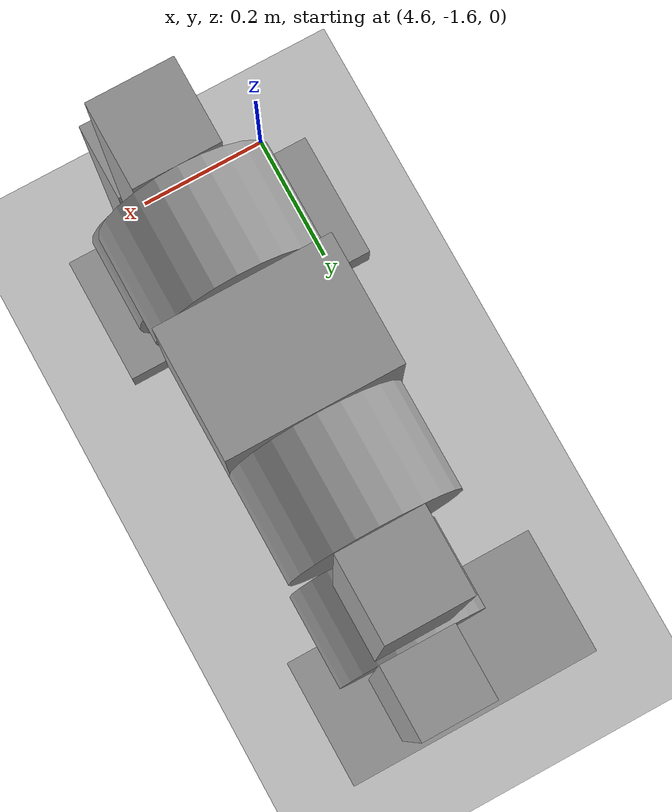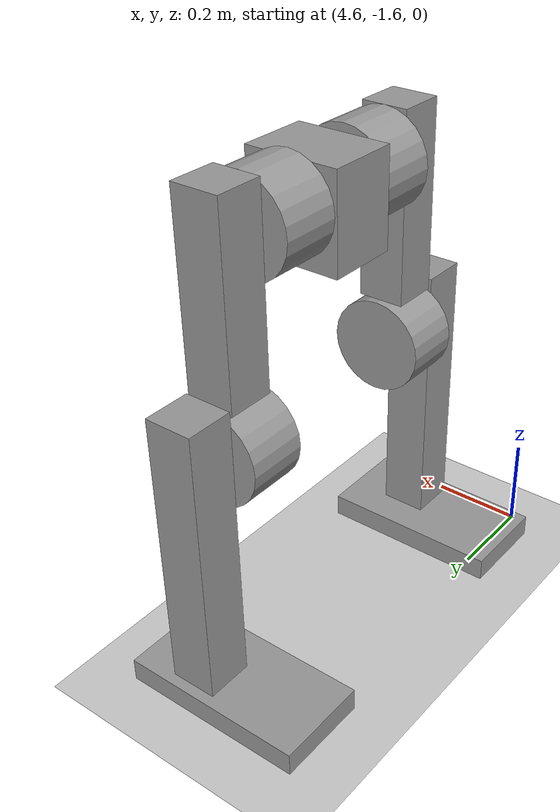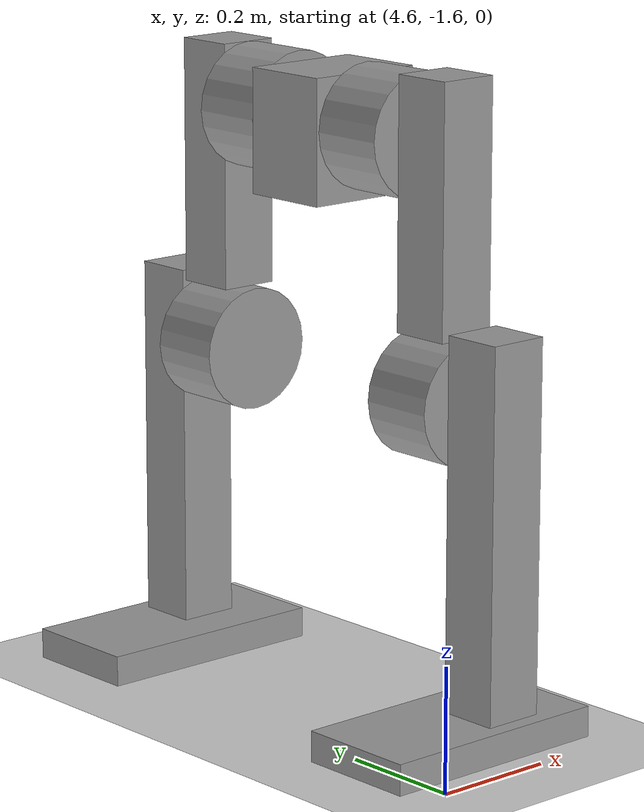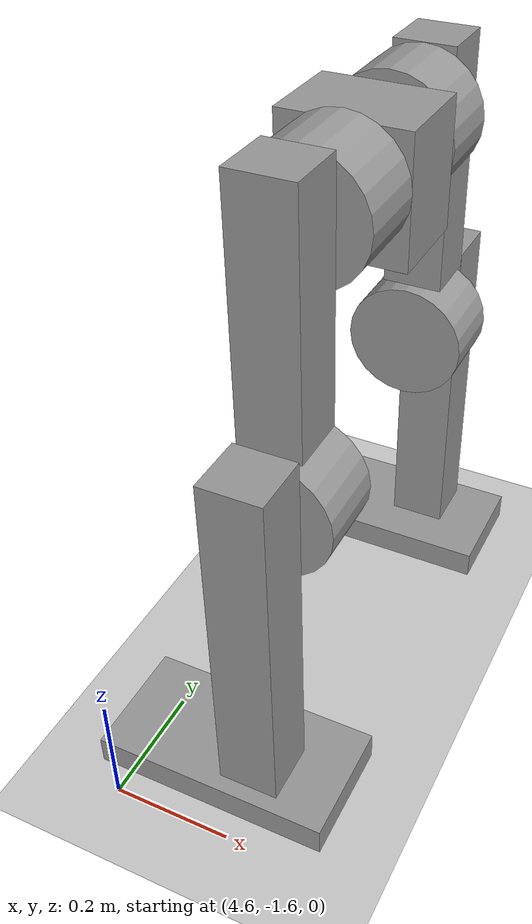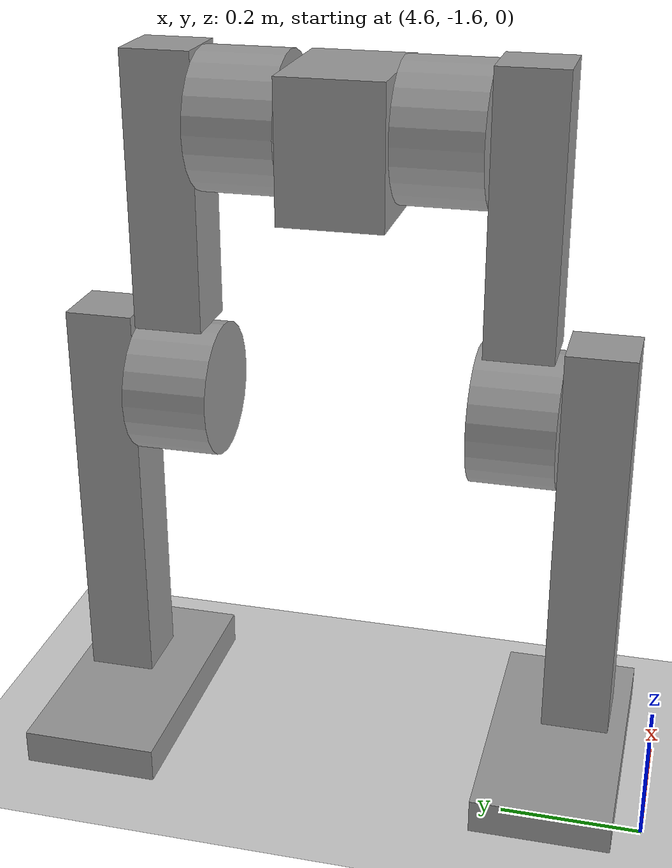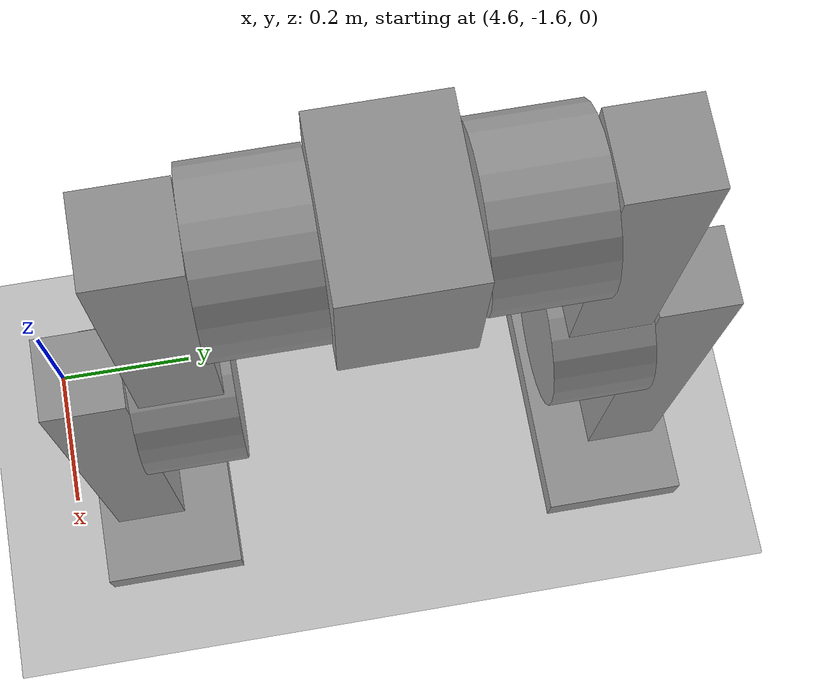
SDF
<sdf version="1.6">
 <world name="default">
  <model name="ground_plane">
   <static>1</static>
   <link name="link">
    <collision name="collision">
     <geometry><plane><normal>0 0 1</normal><size>100 100</size></plane></geometry>
     <surface><friction><ode><mu>100</mu><mu2>50</mu2></ode></friction></surface>
    </collision>
    <visual name="visual">
     <cast_shadows>0</cast_shadows>
     <geometry><plane><normal>0 0 1</normal><size>100 100</size></plane></geometry>
     <material>
      <script><uri>file://media/materials/scripts/gazebo.material</uri><name>Gazebo/Grey</name></script>
     </material>
    </visual>
   </link>
  </model>
  <model name="humanoid3">
   <link name="link_0_clone">
    <pose>-0.327462 1.23378 -0.128216 0 -0 0</pose>
    <inertial>
     <mass>1</mass>
     <inertia>
      <ixx>0.166667</ixx>
      <ixy>0</ixy>
      <ixz>0</ixz>
      <iyy>0.166667</iyy>
      <iyz>0</iyz>
      <izz>0.166667</izz>
     </inertia>
    </inertial>
    <visual name="visual">
     <geometry><box><size>0.4 0.2 0.05</size></box></geometry>
     <material>
      <lighting>1</lighting>
      <script><uri>file://media/materials/scripts/gazebo.material</uri><name>Gazebo/Grey</name></script>
      <ambient>0.3 0.3 0.3 1</ambient>
      <diffuse>0.7 0.7 0.7 1</diffuse>
      <specular>0.01 0.01 0.01 1</specular>
      <emissive>0 0 0 1</emissive>
      <shader type="vertex"><normal_map>__default__</normal_map></shader>
     </material>
    </visual>
    <collision name="collision">
     <geometry><box><size>0.4 0.2 0.05</size></box></geometry>
     <surface>
      <friction>
       <ode><mu>1</mu><mu2>1</mu2><fdir1>0 0 0</fdir1><slip1>0</slip1><slip2>0</slip2></ode>
       <torsional>
        <coefficient>1</coefficient>
        <patch_radius>0</patch_radius>
        <surface_radius>0</surface_radius>
        <use_patch_radius>1</use_patch_radius>
        <ode><slip>0</slip></ode>
       </torsional>
      </friction>
      <bounce><restitution_coefficient>0</restitution_coefficient><threshold>1e+06</threshold></bounce>
      <contact>
       <collide_without_contact>0</collide_without_contact>
       <collide_without_contact_bitmask>1</collide_without_contact_bitmask>
       <collide_bitmask>1</collide_bitmask>
       <ode>
        <soft_cfm>0</soft_cfm>
        <soft_erp>0.2</soft_erp>
        <kp>1e+13</kp>
        <kd>1</kd>
        <max_vel>0.01</max_vel>
        <min_depth>0</min_depth>
       </ode>
       <bullet>
        <split_impulse>1</split_impulse>
        <split_impulse_penetration_threshold>-0.01</split_impulse_penetration_threshold>
        <soft_cfm>0</soft_cfm>
        <soft_erp>0.2</soft_erp>
        <kp>1e+13</kp>
        <kd>1</kd>
       </bullet>
      </contact>
     </surface>
    </collision>
   </link>
   <link name="link_0_clone_clone">
    <pose>-0.327462 0.558836 -0.128216 0 -0 0</pose>
    <inertial>
     <mass>1</mass>
     <inertia>
      <ixx>0.166667</ixx>
      <ixy>0</ixy>
      <ixz>0</ixz>
      <iyy>0.166667</iyy>
      <iyz>0</iyz>
      <izz>0.166667</izz>
     </inertia>
    </inertial>
    <visual name="visual">
     <geometry><box><size>0.4 0.2 0.05</size></box></geometry>
     <material>
      <lighting>1</lighting>
      <script><uri>file://media/materials/scripts/gazebo.material</uri><name>Gazebo/Grey</name></script>
      <ambient>0.3 0.3 0.3 1</ambient>
      <diffuse>0.7 0.7 0.7 1</diffuse>
      <specular>0.01 0.01 0.01 1</specular>
      <emissive>0 0 0 1</emissive>
      <shader type="vertex"><normal_map>__default__</normal_map></shader>
     </material>
    </visual>
    <collision name="collision">
     <geometry><box><size>0.4 0.2 0.05</size></box></geometry>
     <surface>
      <friction>
       <ode><mu>1</mu><mu2>1</mu2><fdir1>0 0 0</fdir1><slip1>0</slip1><slip2>0</slip2></ode>
       <torsional>
        <coefficient>1</coefficient>
        <patch_radius>0</patch_radius>
        <surface_radius>0</surface_radius>
        <use_patch_radius>1</use_patch_radius>
        <ode><slip>0</slip></ode>
       </torsional>
      </friction>
      <bounce><restitution_coefficient>0</restitution_coefficient><threshold>1e+06</threshold></bounce>
      <contact>
       <collide_without_contact>0</collide_without_contact>
       <collide_without_contact_bitmask>1</collide_without_contact_bitmask>
       <collide_bitmask>1</collide_bitmask>
       <ode>
        <soft_cfm>0</soft_cfm>
        <soft_erp>0.2</soft_erp>
        <kp>1e+13</kp>
        <kd>1</kd>
        <max_vel>0.01</max_vel>
        <min_depth>0</min_depth>
       </ode>
       <bullet>
        <split_impulse>1</split_impulse>
        <split_impulse_penetration_threshold>-0.01</split_impulse_penetration_threshold>
        <soft_cfm>0</soft_cfm>
        <soft_erp>0.2</soft_erp>
        <kp>1e+13</kp>
        <kd>1</kd>
       </bullet>
      </contact>
     </surface>
    </collision>
   </link>
   <link name="link_1">
    <pose>-0.269493 0.9 0.764919 0 -0 0</pose>
    <inertial>
     <mass>1</mass>
     <inertia>
      <ixx>0.166667</ixx>
      <ixy>0</ixy>
      <ixz>0</ixz>
      <iyy>0.166667</iyy>
      <iyz>0</iyz>
      <izz>0.166667</izz>
     </inertia>
    </inertial>
    <visual name="visual">
     <geometry><box><size>0.2 0.15 0.2</size></box></geometry>
     <material>
      <lighting>1</lighting>
      <script><uri>file://media/materials/scripts/gazebo.material</uri><name>Gazebo/Grey</name></script>
      <ambient>0.3 0.3 0.3 1</ambient>
      <diffuse>0.7 0.7 0.7 1</diffuse>
      <specular>0.01 0.01 0.01 1</specular>
      <emissive>0 0 0 1</emissive>
      <shader type="vertex"><normal_map>__default__</normal_map></shader>
     </material>
    </visual>
    <collision name="collision">
     <geometry><box><size>0.2 0.15 0.2</size></box></geometry>
     <surface>
      <friction>
       <ode><mu>1</mu><mu2>1</mu2><fdir1>0 0 0</fdir1><slip1>0</slip1><slip2>0</slip2></ode>
       <torsional>
        <coefficient>1</coefficient>
        <patch_radius>0</patch_radius>
        <surface_radius>0</surface_radius>
        <use_patch_radius>1</use_patch_radius>
        <ode><slip>0</slip></ode>
       </torsional>
      </friction>
      <bounce><restitution_coefficient>0</restitution_coefficient><threshold>1e+06</threshold></bounce>
      <contact>
       <collide_without_contact>0</collide_without_contact>
       <collide_without_contact_bitmask>1</collide_without_contact_bitmask>
       <collide_bitmask>1</collide_bitmask>
       <ode>
        <soft_cfm>0</soft_cfm>
        <soft_erp>0.2</soft_erp>
        <kp>1e+13</kp>
        <kd>1</kd>
        <max_vel>0.01</max_vel>
        <min_depth>0</min_depth>
       </ode>
       <bullet>
        <split_impulse>1</split_impulse>
        <split_impulse_penetration_threshold>-0.01</split_impulse_penetration_threshold>
        <soft_cfm>0</soft_cfm>
        <soft_erp>0.2</soft_erp>
        <kp>1e+13</kp>
        <kd>1</kd>
       </bullet>
      </contact>
     </surface>
    </collision>
   </link>
   <link name="link_2">
    <pose>-0.26746 1.04068 0.781244 1.57109 -1.5566 3.1413</pose>
    <inertial>
     <mass>1</mass>
     <inertia><ixx>0.145833</ixx><ixy>0</ixy><ixz>0</ixz><iyy>0.145833</iyy><iyz>0</iyz><izz>0.125</izz></inertia>
    </inertial>
    <visual name="visual">
     <geometry><cylinder><radius>0.1</radius><length>0.125</length></cylinder></geometry>
     <material>
      <lighting>1</lighting>
      <script><uri>file://media/materials/scripts/gazebo.material</uri><name>Gazebo/Grey</name></script>
      <ambient>0.3 0.3 0.3 1</ambient>
      <diffuse>0.7 0.7 0.7 1</diffuse>
      <specular>0.01 0.01 0.01 1</specular>
      <emissive>0 0 0 1</emissive>
      <shader type="vertex"><normal_map>__default__</normal_map></shader>
     </material>
    </visual>
    <collision name="collision">
     <geometry><cylinder><radius>0.1</radius><length>0.125</length></cylinder></geometry>
     <surface>
      <friction>
       <ode><mu>1</mu><mu2>1</mu2><fdir1>0 0 0</fdir1><slip1>0</slip1><slip2>0</slip2></ode>
       <torsional>
        <coefficient>1</coefficient>
        <patch_radius>0</patch_radius>
        <surface_radius>0</surface_radius>
        <use_patch_radius>1</use_patch_radius>
        <ode><slip>0</slip></ode>
       </torsional>
      </friction>
      <bounce><restitution_coefficient>0</restitution_coefficient><threshold>1e+06</threshold></bounce>
      <contact>
       <collide_without_contact>0</collide_without_contact>
       <collide_without_contact_bitmask>1</collide_without_contact_bitmask>
       <collide_bitmask>1</collide_bitmask>
       <ode>
        <soft_cfm>0</soft_cfm>
        <soft_erp>0.2</soft_erp>
        <kp>1e+13</kp>
        <kd>1</kd>
        <max_vel>0.01</max_vel>
        <min_depth>0</min_depth>
       </ode>
       <bullet>
        <split_impulse>1</split_impulse>
        <split_impulse_penetration_threshold>-0.01</split_impulse_penetration_threshold>
        <soft_cfm>0</soft_cfm>
        <soft_erp>0.2</soft_erp>
        <kp>1e+13</kp>
        <kd>1</kd>
       </bullet>
      </contact>
     </surface>
    </collision>
   </link>
   <link name="link_2_clone">
    <pose>-0.267462 0.76 0.781244 -1.5708 -0 -0</pose>
    <inertial>
     <mass>1</mass>
     <inertia><ixx>0.145833</ixx><ixy>0</ixy><ixz>0</ixz><iyy>0.145833</iyy><iyz>0</iyz><izz>0.125</izz></inertia>
    </inertial>
    <visual name="visual">
     <geometry><cylinder><radius>0.1</radius><length>0.125</length></cylinder></geometry>
     <material>
      <lighting>1</lighting>
      <script><uri>file://media/materials/scripts/gazebo.material</uri><name>Gazebo/Grey</name></script>
      <ambient>0.3 0.3 0.3 1</ambient>
      <diffuse>0.7 0.7 0.7 1</diffuse>
      <specular>0.01 0.01 0.01 1</specular>
      <emissive>0 0 0 1</emissive>
      <shader type="vertex"><normal_map>__default__</normal_map></shader>
     </material>
    </visual>
    <collision name="collision">
     <geometry><cylinder><radius>0.1</radius><length>0.125</length></cylinder></geometry>
     <surface>
      <friction>
       <ode><mu>1</mu><mu2>1</mu2><fdir1>0 0 0</fdir1><slip1>0</slip1><slip2>0</slip2></ode>
       <torsional>
        <coefficient>1</coefficient>
        <patch_radius>0</patch_radius>
        <surface_radius>0</surface_radius>
        <use_patch_radius>1</use_patch_radius>
        <ode><slip>0</slip></ode>
       </torsional>
      </friction>
      <bounce><restitution_coefficient>0</restitution_coefficient><threshold>1e+06</threshold></bounce>
      <contact>
       <collide_without_contact>0</collide_without_contact>
       <collide_without_contact_bitmask>1</collide_without_contact_bitmask>
       <collide_bitmask>1</collide_bitmask>
       <ode>
        <soft_cfm>0</soft_cfm>
        <soft_erp>0.2</soft_erp>
        <kp>1e+13</kp>
        <kd>1</kd>
        <max_vel>0.01</max_vel>
        <min_depth>0</min_depth>
       </ode>
       <bullet>
        <split_impulse>1</split_impulse>
        <split_impulse_penetration_threshold>-0.01</split_impulse_penetration_threshold>
        <soft_cfm>0</soft_cfm>
        <soft_erp>0.2</soft_erp>
        <kp>1e+13</kp>
        <kd>1</kd>
       </bullet>
      </contact>
     </surface>
    </collision>
   </link>
   <link name="link_2_clone_0">
    <pose>-0.26901 1.14835 0.379834 1.57106 -1.5566 3.14133</pose>
    <inertial>
     <mass>1</mass>
     <inertia><ixx>0.145833</ixx><ixy>0</ixy><ixz>0</ixz><iyy>0.145833</iyy><iyz>0</iyz><izz>0.125</izz></inertia>
    </inertial>
    <visual name="visual">
     <geometry><cylinder><radius>0.1</radius><length>0.125</length></cylinder></geometry>
     <material>
      <lighting>1</lighting>
      <script><uri>file://media/materials/scripts/gazebo.material</uri><name>Gazebo/Grey</name></script>
      <ambient>0.3 0.3 0.3 1</ambient>
      <diffuse>0.7 0.7 0.7 1</diffuse>
      <specular>0.01 0.01 0.01 1</specular>
      <emissive>0 0 0 1</emissive>
      <shader type="vertex"><normal_map>__default__</normal_map></shader>
     </material>
    </visual>
    <collision name="collision">
     <geometry><cylinder><radius>0.1</radius><length>0.125</length></cylinder></geometry>
     <surface>
      <friction>
       <ode><mu>1</mu><mu2>1</mu2><fdir1>0 0 0</fdir1><slip1>0</slip1><slip2>0</slip2></ode>
       <torsional>
        <coefficient>1</coefficient>
        <patch_radius>0</patch_radius>
        <surface_radius>0</surface_radius>
        <use_patch_radius>1</use_patch_radius>
        <ode><slip>0</slip></ode>
       </torsional>
      </friction>
      <bounce><restitution_coefficient>0</restitution_coefficient><threshold>1e+06</threshold></bounce>
      <contact>
       <collide_without_contact>0</collide_without_contact>
       <collide_without_contact_bitmask>1</collide_without_contact_bitmask>
       <collide_bitmask>1</collide_bitmask>
       <ode>
        <soft_cfm>0</soft_cfm>
        <soft_erp>0.2</soft_erp>
        <kp>1e+13</kp>
        <kd>1</kd>
        <max_vel>0.01</max_vel>
        <min_depth>0</min_depth>
       </ode>
       <bullet>
        <split_impulse>1</split_impulse>
        <split_impulse_penetration_threshold>-0.01</split_impulse_penetration_threshold>
        <soft_cfm>0</soft_cfm>
        <soft_erp>0.2</soft_erp>
        <kp>1e+13</kp>
        <kd>1</kd>
       </bullet>
      </contact>
     </surface>
    </collision>
   </link>
   <link name="link_2_clone_0_clone">
    <pose>-0.265814 0.6475 0.379834 1.57106 -1.5566 3.14133</pose>
    <inertial>
     <mass>1</mass>
     <inertia><ixx>0.145833</ixx><ixy>0</ixy><ixz>0</ixz><iyy>0.145833</iyy><iyz>0</iyz><izz>0.125</izz></inertia>
    </inertial>
    <visual name="visual">
     <geometry><cylinder><radius>0.1</radius><length>0.125</length></cylinder></geometry>
     <material>
      <lighting>1</lighting>
      <script><uri>file://media/materials/scripts/gazebo.material</uri><name>Gazebo/Grey</name></script>
      <ambient>0.3 0.3 0.3 1</ambient>
      <diffuse>0.7 0.7 0.7 1</diffuse>
      <specular>0.01 0.01 0.01 1</specular>
      <emissive>0 0 0 1</emissive>
      <shader type="vertex"><normal_map>__default__</normal_map></shader>
     </material>
    </visual>
    <collision name="collision">
     <geometry><cylinder><radius>0.1</radius><length>0.125</length></cylinder></geometry>
     <surface>
      <friction>
       <ode><mu>1</mu><mu2>1</mu2><fdir1>0 0 0</fdir1><slip1>0</slip1><slip2>0</slip2></ode>
       <torsional>
        <coefficient>1</coefficient>
        <patch_radius>0</patch_radius>
        <surface_radius>0</surface_radius>
        <use_patch_radius>1</use_patch_radius>
        <ode><slip>0</slip></ode>
       </torsional>
      </friction>
      <bounce><restitution_coefficient>0</restitution_coefficient><threshold>1e+06</threshold></bounce>
      <contact>
       <collide_without_contact>0</collide_without_contact>
       <collide_without_contact_bitmask>1</collide_without_contact_bitmask>
       <collide_bitmask>1</collide_bitmask>
       <ode>
        <soft_cfm>0</soft_cfm>
        <soft_erp>0.2</soft_erp>
        <kp>1e+13</kp>
        <kd>1</kd>
        <max_vel>0.01</max_vel>
        <min_depth>0</min_depth>
       </ode>
       <bullet>
        <split_impulse>1</split_impulse>
        <split_impulse_penetration_threshold>-0.01</split_impulse_penetration_threshold>
        <soft_cfm>0</soft_cfm>
        <soft_erp>0.2</soft_erp>
        <kp>1e+13</kp>
        <kd>1</kd>
       </bullet>
      </contact>
     </surface>
    </collision>
   </link>
   <link name="link_3">
    <pose>-0.267461 1.15468 0.681244 0 -0 0</pose>
    <inertial>
     <mass>1</mass>
     <inertia>
      <ixx>0.166667</ixx>
      <ixy>0</ixy>
      <ixz>0</ixz>
      <iyy>0.166667</iyy>
      <iyz>0</iyz>
      <izz>0.166667</izz>
     </inertia>
    </inertial>
    <visual name="visual">
     <geometry><box><size>0.1 0.1 0.4</size></box></geometry>
     <material>
      <lighting>1</lighting>
      <script><uri>file://media/materials/scripts/gazebo.material</uri><name>Gazebo/Grey</name></script>
      <ambient>0.3 0.3 0.3 1</ambient>
      <diffuse>0.7 0.7 0.7 1</diffuse>
      <specular>0.01 0.01 0.01 1</specular>
      <emissive>0 0 0 1</emissive>
      <shader type="vertex"><normal_map>__default__</normal_map></shader>
     </material>
    </visual>
    <collision name="collision">
     <geometry><box><size>0.1 0.1 0.4</size></box></geometry>
     <surface>
      <friction>
       <ode><mu>1</mu><mu2>1</mu2><fdir1>0 0 0</fdir1><slip1>0</slip1><slip2>0</slip2></ode>
       <torsional>
        <coefficient>1</coefficient>
        <patch_radius>0</patch_radius>
        <surface_radius>0</surface_radius>
        <use_patch_radius>1</use_patch_radius>
        <ode><slip>0</slip></ode>
       </torsional>
      </friction>
      <bounce><restitution_coefficient>0</restitution_coefficient><threshold>1e+06</threshold></bounce>
      <contact>
       <collide_without_contact>0</collide_without_contact>
       <collide_without_contact_bitmask>1</collide_without_contact_bitmask>
       <collide_bitmask>1</collide_bitmask>
       <ode>
        <soft_cfm>0</soft_cfm>
        <soft_erp>0.2</soft_erp>
        <kp>1e+13</kp>
        <kd>1</kd>
        <max_vel>0.01</max_vel>
        <min_depth>0</min_depth>
       </ode>
       <bullet>
        <split_impulse>1</split_impulse>
        <split_impulse_penetration_threshold>-0.01</split_impulse_penetration_threshold>
        <soft_cfm>0</soft_cfm>
        <soft_erp>0.2</soft_erp>
        <kp>1e+13</kp>
        <kd>1</kd>
       </bullet>
      </contact>
     </surface>
    </collision>
   </link>
   <link name="link_3_clone">
    <pose>-0.267462 0.6475 0.681244 0 -0 0</pose>
    <inertial>
     <mass>1</mass>
     <inertia>
      <ixx>0.166667</ixx>
      <ixy>0</ixy>
      <ixz>0</ixz>
      <iyy>0.166667</iyy>
      <iyz>0</iyz>
      <izz>0.166667</izz>
     </inertia>
    </inertial>
    <visual name="visual">
     <geometry><box><size>0.1 0.1 0.4</size></box></geometry>
     <material>
      <lighting>1</lighting>
      <script><uri>file://media/materials/scripts/gazebo.material</uri><name>Gazebo/Grey</name></script>
      <ambient>0.3 0.3 0.3 1</ambient>
      <diffuse>0.7 0.7 0.7 1</diffuse>
      <specular>0.01 0.01 0.01 1</specular>
      <emissive>0 0 0 1</emissive>
      <shader type="vertex"><normal_map>__default__</normal_map></shader>
     </material>
    </visual>
    <collision name="collision">
     <geometry><box><size>0.1 0.1 0.4</size></box></geometry>
     <surface>
      <friction>
       <ode><mu>1</mu><mu2>1</mu2><fdir1>0 0 0</fdir1><slip1>0</slip1><slip2>0</slip2></ode>
       <torsional>
        <coefficient>1</coefficient>
        <patch_radius>0</patch_radius>
        <surface_radius>0</surface_radius>
        <use_patch_radius>1</use_patch_radius>
        <ode><slip>0</slip></ode>
       </torsional>
      </friction>
      <bounce><restitution_coefficient>0</restitution_coefficient><threshold>1e+06</threshold></bounce>
      <contact>
       <collide_without_contact>0</collide_without_contact>
       <collide_without_contact_bitmask>1</collide_without_contact_bitmask>
       <collide_bitmask>1</collide_bitmask>
       <ode>
        <soft_cfm>0</soft_cfm>
        <soft_erp>0.2</soft_erp>
        <kp>1e+13</kp>
        <kd>1</kd>
        <max_vel>0.01</max_vel>
        <min_depth>0</min_depth>
       </ode>
       <bullet>
        <split_impulse>1</split_impulse>
        <split_impulse_penetration_threshold>-0.01</split_impulse_penetration_threshold>
        <soft_cfm>0</soft_cfm>
        <soft_erp>0.2</soft_erp>
        <kp>1e+13</kp>
        <kd>1</kd>
       </bullet>
      </contact>
     </surface>
    </collision>
   </link>
   <link name="link_3_clone_0">
    <pose>-0.26901 1.26085 0.196784 0 -0 0</pose>
    <inertial>
     <mass>1</mass>
     <inertia>
      <ixx>0.166667</ixx>
      <ixy>0</ixy>
      <ixz>0</ixz>
      <iyy>0.166667</iyy>
      <iyz>0</iyz>
      <izz>0.166667</izz>
     </inertia>
    </inertial>
    <visual name="visual">
     <geometry><box><size>0.1 0.1 0.6</size></box></geometry>
     <material>
      <lighting>1</lighting>
      <script><uri>file://media/materials/scripts/gazebo.material</uri><name>Gazebo/Grey</name></script>
      <ambient>0.3 0.3 0.3 1</ambient>
      <diffuse>0.7 0.7 0.7 1</diffuse>
      <specular>0.01 0.01 0.01 1</specular>
      <emissive>0 0 0 1</emissive>
      <shader type="vertex"><normal_map>__default__</normal_map></shader>
     </material>
    </visual>
    <collision name="collision">
     <geometry><box><size>0.1 0.1 0.6</size></box></geometry>
     <surface>
      <friction>
       <ode><mu>1</mu><mu2>1</mu2><fdir1>0 0 0</fdir1><slip1>0</slip1><slip2>0</slip2></ode>
       <torsional>
        <coefficient>1</coefficient>
        <patch_radius>0</patch_radius>
        <surface_radius>0</surface_radius>
        <use_patch_radius>1</use_patch_radius>
        <ode><slip>0</slip></ode>
       </torsional>
      </friction>
      <bounce><restitution_coefficient>0</restitution_coefficient><threshold>1e+06</threshold></bounce>
      <contact>
       <collide_without_contact>0</collide_without_contact>
       <collide_without_contact_bitmask>1</collide_without_contact_bitmask>
       <collide_bitmask>1</collide_bitmask>
       <ode>
        <soft_cfm>0</soft_cfm>
        <soft_erp>0.2</soft_erp>
        <kp>1e+13</kp>
        <kd>1</kd>
        <max_vel>0.01</max_vel>
        <min_depth>0</min_depth>
       </ode>
       <bullet>
        <split_impulse>1</split_impulse>
        <split_impulse_penetration_threshold>-0.01</split_impulse_penetration_threshold>
        <soft_cfm>0</soft_cfm>
        <soft_erp>0.2</soft_erp>
        <kp>1e+13</kp>
        <kd>1</kd>
       </bullet>
      </contact>
     </surface>
    </collision>
   </link>
   <link name="link_3_clone_0_clone">
    <pose>-0.265814 0.535 0.196784 0 -0 0</pose>
    <inertial>
     <mass>1</mass>
     <inertia>
      <ixx>0.166667</ixx>
      <ixy>0</ixy>
      <ixz>0</ixz>
      <iyy>0.166667</iyy>
      <iyz>0</iyz>
      <izz>0.166667</izz>
     </inertia>
    </inertial>
    <visual name="visual">
     <geometry><box><size>0.1 0.1 0.6</size></box></geometry>
     <material>
      <lighting>1</lighting>
      <script><uri>file://media/materials/scripts/gazebo.material</uri><name>Gazebo/Grey</name></script>
      <ambient>0.3 0.3 0.3 1</ambient>
      <diffuse>0.7 0.7 0.7 1</diffuse>
      <specular>0.01 0.01 0.01 1</specular>
      <emissive>0 0 0 1</emissive>
      <shader type="vertex"><normal_map>__default__</normal_map></shader>
     </material>
    </visual>
    <collision name="collision">
     <geometry><box><size>0.1 0.1 0.6</size></box></geometry>
     <surface>
      <friction>
       <ode><mu>1</mu><mu2>1</mu2><fdir1>0 0 0</fdir1><slip1>0</slip1><slip2>0</slip2></ode>
       <torsional>
        <coefficient>1</coefficient>
        <patch_radius>0</patch_radius>
        <surface_radius>0</surface_radius>
        <use_patch_radius>1</use_patch_radius>
        <ode><slip>0</slip></ode>
       </torsional>
      </friction>
      <bounce><restitution_coefficient>0</restitution_coefficient><threshold>1e+06</threshold></bounce>
      <contact>
       <collide_without_contact>0</collide_without_contact>
       <collide_without_contact_bitmask>1</collide_without_contact_bitmask>
       <collide_bitmask>1</collide_bitmask>
       <ode>
        <soft_cfm>0</soft_cfm>
        <soft_erp>0.2</soft_erp>
        <kp>1e+13</kp>
        <kd>1</kd>
        <max_vel>0.01</max_vel>
        <min_depth>0</min_depth>
       </ode>
       <bullet>
        <split_impulse>1</split_impulse>
        <split_impulse_penetration_threshold>-0.01</split_impulse_penetration_threshold>
        <soft_cfm>0</soft_cfm>
        <soft_erp>0.2</soft_erp>
        <kp>1e+13</kp>
        <kd>1</kd>
       </bullet>
      </contact>
     </surface>
    </collision>
   </link>
   <joint name="link_1_JOINT_0" type="revolute">
    <parent>link_1</parent>
    <child>link_2</child>
    <axis>
     <xyz>0 0 -1</xyz>
     <use_parent_model_frame>0</use_parent_model_frame>
     <limit>
      <lower>-1.79769e+308</lower>
      <upper>1.79769e+308</upper>
      <effort>-1</effort>
      <velocity>-1</velocity>
     </limit>
     <dynamics>
      <spring_reference>0</spring_reference>
      <spring_stiffness>0</spring_stiffness>
      <damping>0</damping>
      <friction>0</friction>
     </dynamics>
    </axis>
    <physics>
     <ode><limit><cfm>0</cfm><erp>0.2</erp></limit><suspension><cfm>0</cfm><erp>0.2</erp></suspension></ode>
    </physics>
   </joint>
   <joint name="link_1_JOINT_1" type="revolute">
    <parent>link_1</parent>
    <child>link_2_clone</child>
    <axis>
     <xyz>0 0 1</xyz>
     <use_parent_model_frame>0</use_parent_model_frame>
     <limit>
      <lower>-1.79769e+308</lower>
      <upper>1.79769e+308</upper>
      <effort>-1</effort>
      <velocity>-1</velocity>
     </limit>
     <dynamics>
      <spring_reference>0</spring_reference>
      <spring_stiffness>0</spring_stiffness>
      <damping>0</damping>
      <friction>0</friction>
     </dynamics>
    </axis>
    <physics>
     <ode><limit><cfm>0</cfm><erp>0.2</erp></limit><suspension><cfm>0</cfm><erp>0.2</erp></suspension></ode>
    </physics>
   </joint>
   <joint name="link_2_JOINT_2" type="fixed">
    <parent>link_2</parent>
    <child>link_3</child>
    <pose>0 0 0.1 0 -0 0</pose>
    <physics>
     <ode><limit><cfm>0</cfm><erp>0.2</erp></limit><suspension><cfm>0</cfm><erp>0.2</erp></suspension></ode>
    </physics>
   </joint>
   <joint name="link_2_clone_0_JOINT_8" type="revolute">
    <parent>link_2_clone_0</parent>
    <child>link_3_clone_0</child>
    <pose>0 0 0.18 0 -0 0</pose>
    <axis>
     <xyz>0 -1 0</xyz>
     <use_parent_model_frame>0</use_parent_model_frame>
     <limit>
      <lower>-1.79769e+308</lower>
      <upper>1.79769e+308</upper>
      <effort>-1</effort>
      <velocity>-1</velocity>
     </limit>
     <dynamics>
      <spring_reference>0</spring_reference>
      <spring_stiffness>0</spring_stiffness>
      <damping>0</damping>
      <friction>0</friction>
     </dynamics>
    </axis>
    <physics>
     <ode><limit><cfm>0</cfm><erp>0.2</erp></limit><suspension><cfm>0</cfm><erp>0.2</erp></suspension></ode>
    </physics>
   </joint>
   <joint name="link_2_clone_0_clone_JOINT_9" type="revolute">
    <parent>link_2_clone_0_clone</parent>
    <child>link_3_clone_0_clone</child>
    <pose>0 0 0.18 0 -0 0</pose>
    <axis>
     <xyz>0 1 0</xyz>
     <use_parent_model_frame>0</use_parent_model_frame>
     <limit>
      <lower>-1.79769e+308</lower>
      <upper>1.79769e+308</upper>
      <effort>-1</effort>
      <velocity>-1</velocity>
     </limit>
     <dynamics>
      <spring_reference>0</spring_reference>
      <spring_stiffness>0</spring_stiffness>
      <damping>0</damping>
      <friction>0</friction>
     </dynamics>
    </axis>
    <physics>
     <ode><limit><cfm>0</cfm><erp>0.2</erp></limit><suspension><cfm>0</cfm><erp>0.2</erp></suspension></ode>
    </physics>
   </joint>
   <joint name="link_2_clone_JOINT_3" type="fixed">
    <parent>link_2_clone</parent>
    <child>link_3_clone</child>
    <pose>0 0 0.1 0 -0 0</pose>
    <physics>
     <ode><limit><cfm>0</cfm><erp>0.2</erp></limit><suspension><cfm>0</cfm><erp>0.2</erp></suspension></ode>
    </physics>
   </joint>
   <joint name="link_3_JOINT_6" type="fixed">
    <parent>link_3</parent>
    <child>link_2_clone_0</child>
    <physics>
     <ode><limit><cfm>0</cfm><erp>0.2</erp></limit><suspension><cfm>0</cfm><erp>0.2</erp></suspension></ode>
    </physics>
   </joint>
   <joint name="link_3_clone_0_JOINT_10" type="fixed">
    <parent>link_3_clone_0</parent>
    <child>link_0_clone</child>
    <physics>
     <ode><limit><cfm>0</cfm><erp>0.2</erp></limit><suspension><cfm>0</cfm><erp>0.2</erp></suspension></ode>
    </physics>
   </joint>
   <joint name="link_3_clone_0_clone_JOINT_12" type="fixed">
    <parent>link_3_clone_0_clone</parent>
    <child>link_0_clone_clone</child>
    <physics>
     <ode><limit><cfm>0</cfm><erp>0.2</erp></limit><suspension><cfm>0</cfm><erp>0.2</erp></suspension></ode>
    </physics>
   </joint>
   <joint name="link_3_clone_JOINT_7" type="fixed">
    <parent>link_3_clone</parent>
    <child>link_2_clone_0_clone</child>
    <physics>
     <ode><limit><cfm>0</cfm><erp>0.2</erp></limit><suspension><cfm>0</cfm><erp>0.2</erp></suspension></ode>
    </physics>
   </joint>
   <static>0</static>
   <pose>5.07186 -2.01927 0.153222 -4e-06 0 0.001521</pose>
  </model>
 </world>
</sdf>
